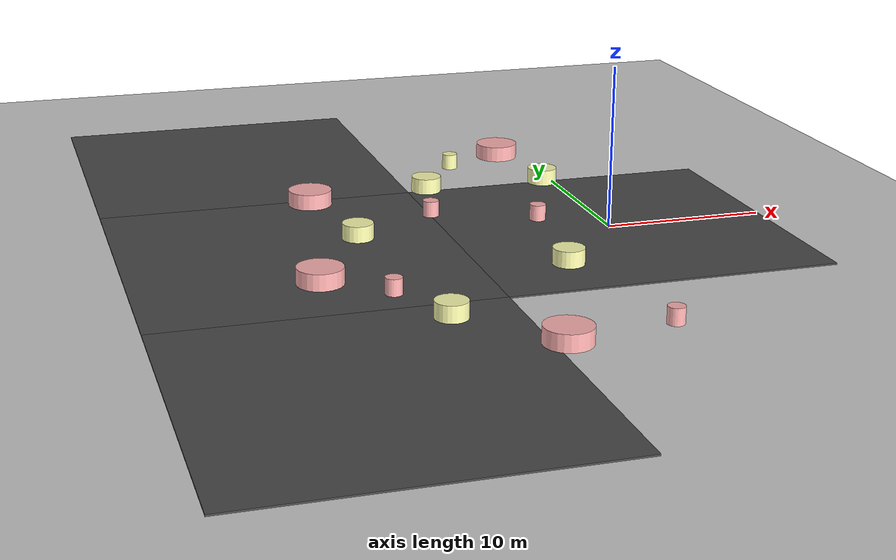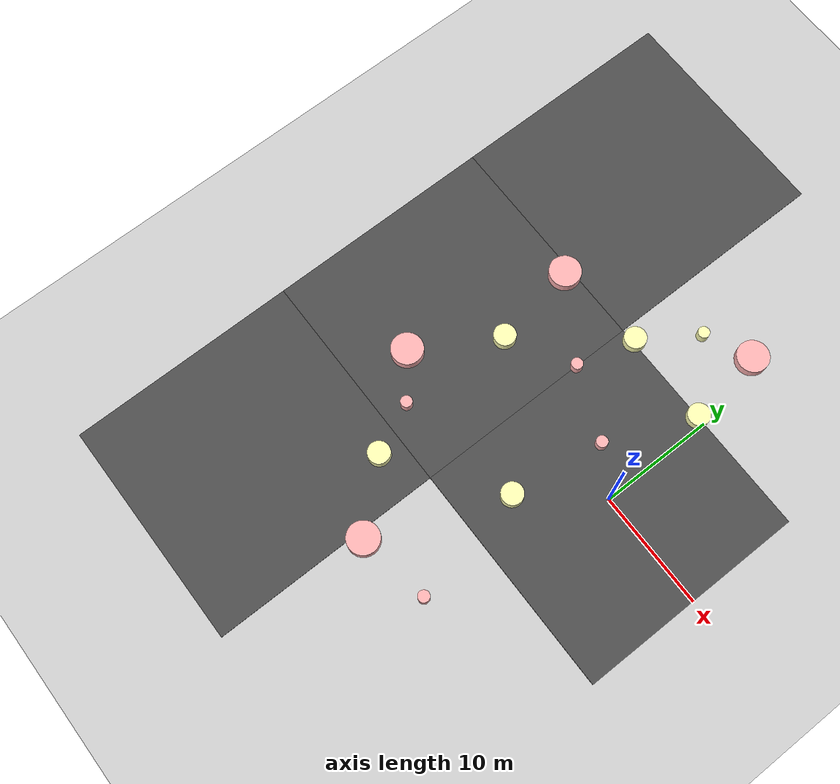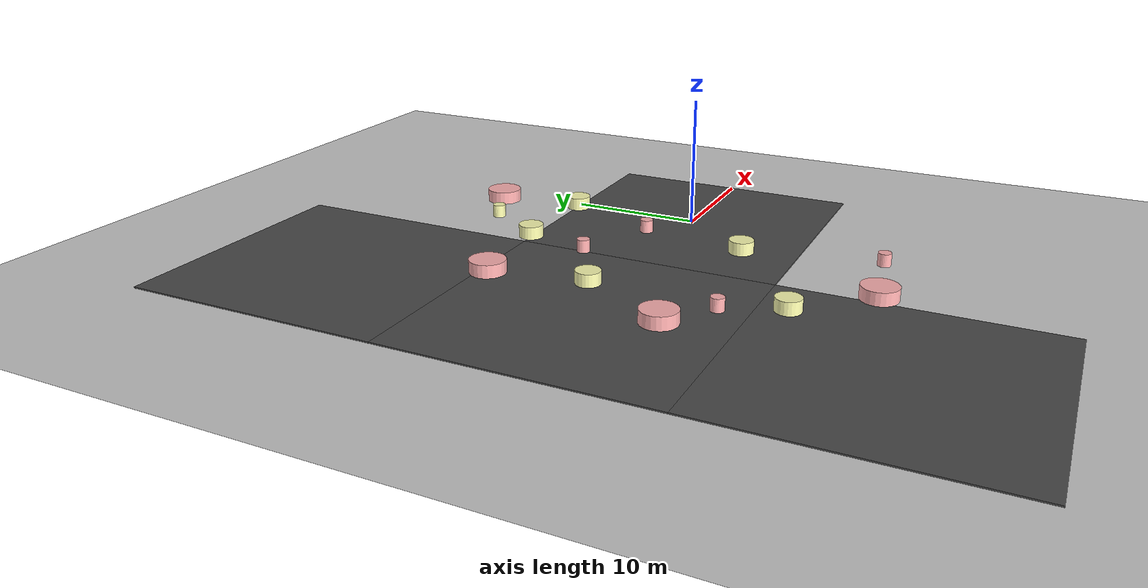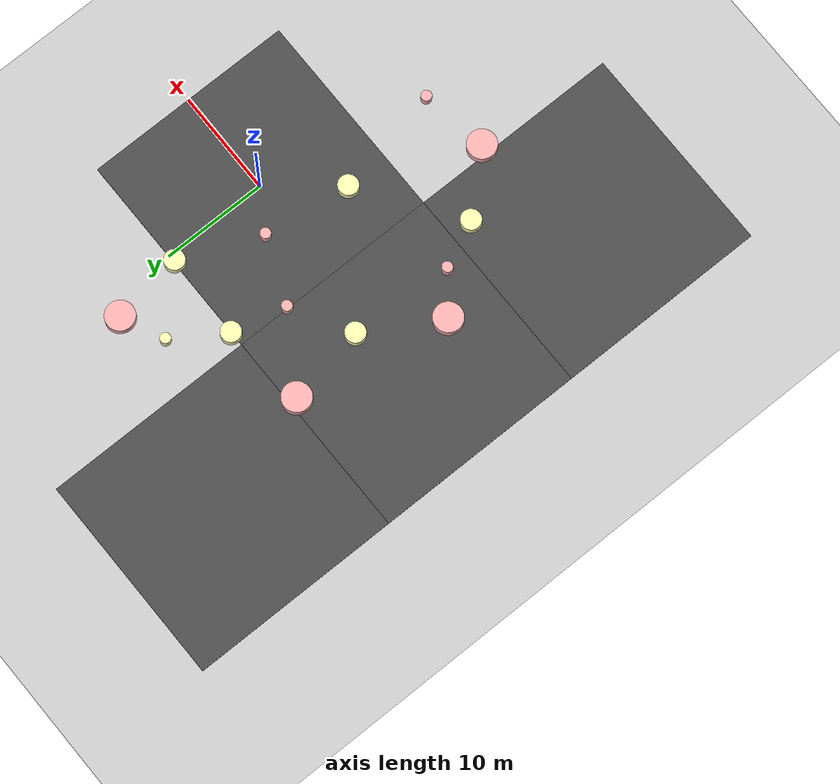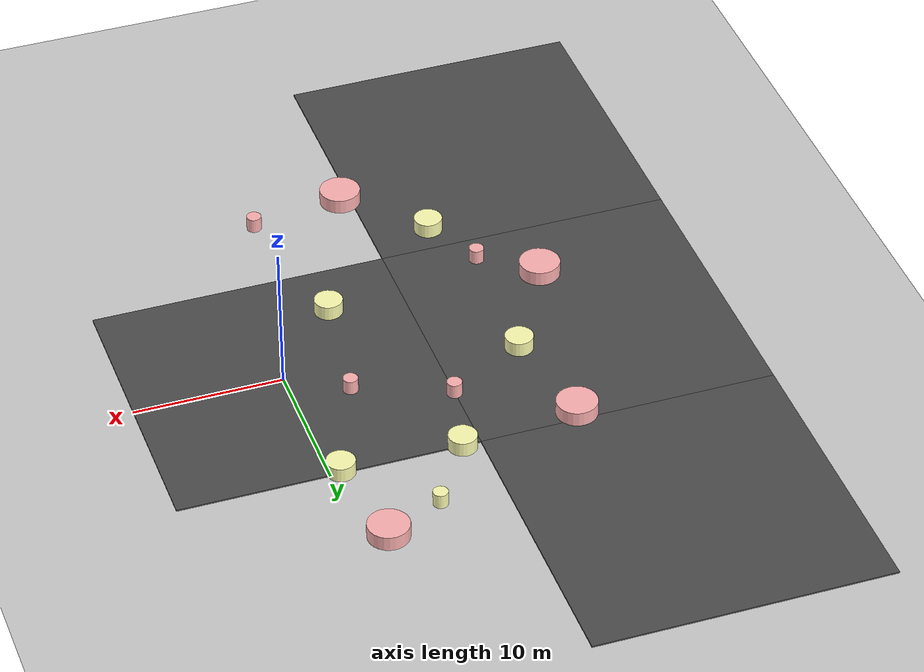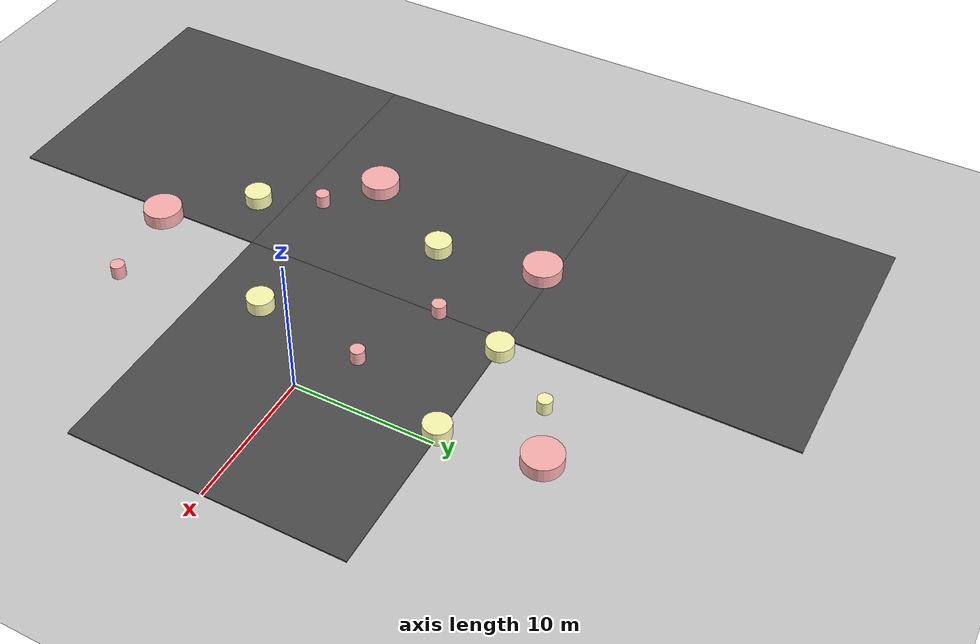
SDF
<sdf version="1.6">
 <world name="default">
  <model name="ground_plane">
   <static>1</static>
   <link name="link">
    <collision name="collision">
     <geometry><plane><normal>0 0 1</normal><size>100 100</size></plane></geometry>
     <surface><friction><ode><mu>100</mu><mu2>50</mu2></ode></friction></surface>
    </collision>
    <visual name="visual">
     <cast_shadows>0</cast_shadows>
     <geometry><plane><normal>0 0 1</normal><size>100 100</size></plane></geometry>
     <material>
      <script><uri>file://media/materials/scripts/gazebo.material</uri><name>Gazebo/Grey</name></script>
     </material>
    </visual>
   </link>
  </model>
  <model name="asphalt_plane">
   <static>1</static>
   <link name="link">
    <collision name="collision"><geometry><box><size>20 20 0.1</size></box></geometry></collision>
    <visual name="visual">
     <cast_shadows>0</cast_shadows>
     <geometry><box><size>20 20 0.1</size></box></geometry>
     <material>
      <script>
       <uri>model://asphalt_plane/materials/scripts</uri>
       <uri>model://asphalt_plane/materials/textures</uri>
       <name>vrc/asphalt</name>
      </script>
     </material>
    </visual>
   </link>
  </model>
  <model name="asphalt_plane_clone">
   <static>1</static>
   <link name="link">
    <collision name="collision"><geometry><box><size>20 20 0.1</size></box></geometry></collision>
    <visual name="visual">
     <cast_shadows>0</cast_shadows>
     <geometry><box><size>20 20 0.1</size></box></geometry>
     <material>
      <script>
       <uri>model://asphalt_plane/materials/scripts</uri>
       <uri>model://asphalt_plane/materials/textures</uri>
       <name>vrc/asphalt</name>
      </script>
     </material>
    </visual>
   </link>
   <pose>-20 0 0 0 -0 0</pose>
  </model>
  <model name="asphalt_plane_clone_clone_clone_0">
   <static>1</static>
   <link name="link">
    <collision name="collision"><geometry><box><size>20 20 0.1</size></box></geometry></collision>
    <visual name="visual">
     <cast_shadows>0</cast_shadows>
     <geometry><box><size>20 20 0.1</size></box></geometry>
     <material>
      <script>
       <uri>model://asphalt_plane/materials/scripts</uri>
       <uri>model://asphalt_plane/materials/textures</uri>
       <name>vrc/asphalt</name>
      </script>
     </material>
    </visual>
   </link>
   <pose>-20 20 0 0 -0 0</pose>
  </model>
  <model name="asphalt_plane_clone_clone_clone_4">
   <static>1</static>
   <link name="link">
    <collision name="collision"><geometry><box><size>20 20 0.1</size></box></geometry></collision>
    <visual name="visual">
     <cast_shadows>0</cast_shadows>
     <geometry><box><size>20 20 0.1</size></box></geometry>
     <material>
      <script>
       <uri>model://asphalt_plane/materials/scripts</uri>
       <uri>model://asphalt_plane/materials/textures</uri>
       <name>vrc/asphalt</name>
      </script>
     </material>
    </visual>
   </link>
   <pose>-20 -20 0 0 -0 0</pose>
  </model>
  <model name="LandmarksColoured_1">
   <link name="link_4">
    <pose>-2.89321 -15.9613 0 0 -0 0</pose>
    <inertial>
     <mass>1</mass>
     <inertia><ixx>0.145833</ixx><ixy>0</ixy><ixz>0</ixz><iyy>0.145833</iyy><iyz>0</iyz><izz>0.125</izz></inertia>
    </inertial>
    <visual name="visual">
     <geometry><cylinder><radius>0.5</radius><length>1</length></cylinder></geometry>
     <material>
      <lighting>1</lighting>
      <script><uri>file://media/materials/scripts/gazebo.material</uri><name>Gazebo/Grey</name></script>
      <ambient>1 0.3 0.3 1</ambient>
      <diffuse>1 0.7 0.7 1</diffuse>
      <specular>1 0.01 0.01 1</specular>
      <emissive>1 0 0 1</emissive>
      <shader type="vertex"><normal_map>__default__</normal_map></shader>
     </material>
    </visual>
    <collision name="collision">
     <geometry><cylinder><radius>0.5</radius><length>1</length></cylinder></geometry>
     <surface>
      <friction>
       <ode><mu>1</mu><mu2>1</mu2><fdir1>0 0 0</fdir1><slip1>0</slip1><slip2>0</slip2></ode>
       <torsional>
        <coefficient>1</coefficient>
        <patch_radius>0</patch_radius>
        <surface_radius>0</surface_radius>
        <use_patch_radius>1</use_patch_radius>
        <ode><slip>0</slip></ode>
       </torsional>
      </friction>
      <bounce><restitution_coefficient>0</restitution_coefficient><threshold>1e+06</threshold></bounce>
      <contact>
       <collide_without_contact>0</collide_without_contact>
       <collide_without_contact_bitmask>1</collide_without_contact_bitmask>
       <collide_bitmask>1</collide_bitmask>
       <ode>
        <soft_cfm>0</soft_cfm>
        <soft_erp>0.2</soft_erp>
        <kp>1e+13</kp>
        <kd>1</kd>
        <max_vel>0.01</max_vel>
        <min_depth>0</min_depth>
       </ode>
       <bullet>
        <split_impulse>1</split_impulse>
        <split_impulse_penetration_threshold>-0.01</split_impulse_penetration_threshold>
        <soft_cfm>0</soft_cfm>
        <soft_erp>0.2</soft_erp>
        <kp>1e+13</kp>
        <kd>1</kd>
       </bullet>
      </contact>
     </surface>
    </collision>
   </link>
   <link name="link_4_clone">
    <pose>-5.38997 14.9192 -0 0 -0 0</pose>
    <inertial>
     <mass>1</mass>
     <inertia><ixx>0.145833</ixx><ixy>0</ixy><ixz>0</ixz><iyy>0.145833</iyy><iyz>0</iyz><izz>0.125</izz></inertia>
    </inertial>
    <visual name="ModelPreview_4::link_4_clone::visual_1">
     <geometry><cylinder><radius>0.5</radius><length>1</length></cylinder></geometry>
     <material>
      <lighting>1</lighting>
      <script><uri>file://media/materials/scripts/gazebo.material</uri><name>Gazebo/Grey</name></script>
      <ambient>1 1 0.3 1</ambient>
      <diffuse>1 1 0.7 1</diffuse>
      <specular>1 1 0.01 1</specular>
      <emissive>1 0 0 1</emissive>
      <shader type="vertex"><normal_map>__default__</normal_map></shader>
     </material>
    </visual>
    <visual name="visual">
     <geometry><cylinder><radius>0.5</radius><length>1</length></cylinder></geometry>
     <material>
      <lighting>1</lighting>
      <script><uri>file://media/materials/scripts/gazebo.material</uri><name>Gazebo/Grey</name></script>
      <ambient>1 1 0.3 1</ambient>
      <diffuse>1 1 0.7 1</diffuse>
      <specular>1 1 0.01 1</specular>
      <emissive>1 1 0 1</emissive>
      <shader type="vertex"><normal_map>__default__</normal_map></shader>
     </material>
    </visual>
    <collision name="collision">
     <geometry><cylinder><radius>0.5</radius><length>1</length></cylinder></geometry>
     <surface>
      <friction>
       <ode><mu>1</mu><mu2>1</mu2><fdir1>0 0 0</fdir1><slip1>0</slip1><slip2>0</slip2></ode>
       <torsional>
        <coefficient>1</coefficient>
        <patch_radius>0</patch_radius>
        <surface_radius>0</surface_radius>
        <use_patch_radius>1</use_patch_radius>
        <ode><slip>0</slip></ode>
       </torsional>
      </friction>
      <bounce><restitution_coefficient>0</restitution_coefficient><threshold>1e+06</threshold></bounce>
      <contact>
       <collide_without_contact>0</collide_without_contact>
       <collide_without_contact_bitmask>1</collide_without_contact_bitmask>
       <collide_bitmask>1</collide_bitmask>
       <ode>
        <soft_cfm>0</soft_cfm>
        <soft_erp>0.2</soft_erp>
        <kp>1e+13</kp>
        <kd>1</kd>
        <max_vel>0.01</max_vel>
        <min_depth>0</min_depth>
       </ode>
       <bullet>
        <split_impulse>1</split_impulse>
        <split_impulse_penetration_threshold>-0.01</split_impulse_penetration_threshold>
        <soft_cfm>0</soft_cfm>
        <soft_erp>0.2</soft_erp>
        <kp>1e+13</kp>
        <kd>1</kd>
       </bullet>
      </contact>
     </surface>
    </collision>
   </link>
   <link name="link_4_clone_0">
    <pose>-16.491 9.53201 -0 0 -0 0</pose>
    <inertial>
     <mass>7.6137</mass>
     <inertia><ixx>4.2575</ixx><ixy>0</ixy><ixz>0</ixz><iyy>4.2575</iyy><iyz>0</iyz><izz>7.24605</izz></inertia>
    </inertial>
    <visual name="visual">
     <geometry><cylinder><radius>1.37965</radius><length>1</length></cylinder></geometry>
     <material>
      <lighting>1</lighting>
      <script><uri>file://media/materials/scripts/gazebo.material</uri><name>Gazebo/Grey</name></script>
      <ambient>1 0.3 0.3 1</ambient>
      <diffuse>1 0.7 0.7 1</diffuse>
      <specular>1 0.01 0.01 1</specular>
      <emissive>1 0 0 1</emissive>
      <shader type="vertex"><normal_map>__default__</normal_map></shader>
     </material>
    </visual>
    <collision name="collision">
     <geometry><cylinder><radius>1.37965</radius><length>1</length></cylinder></geometry>
     <surface>
      <friction>
       <ode><mu>1</mu><mu2>1</mu2><fdir1>0 0 0</fdir1><slip1>0</slip1><slip2>0</slip2></ode>
       <torsional>
        <coefficient>1</coefficient>
        <patch_radius>0</patch_radius>
        <surface_radius>0</surface_radius>
        <use_patch_radius>1</use_patch_radius>
        <ode><slip>0</slip></ode>
       </torsional>
      </friction>
      <bounce><restitution_coefficient>0</restitution_coefficient><threshold>1e+06</threshold></bounce>
      <contact>
       <collide_without_contact>0</collide_without_contact>
       <collide_without_contact_bitmask>1</collide_without_contact_bitmask>
       <collide_bitmask>1</collide_bitmask>
       <ode>
        <soft_cfm>0</soft_cfm>
        <soft_erp>0.2</soft_erp>
        <kp>1e+13</kp>
        <kd>1</kd>
        <max_vel>0.01</max_vel>
        <min_depth>0</min_depth>
       </ode>
       <bullet>
        <split_impulse>1</split_impulse>
        <split_impulse_penetration_threshold>-0.01</split_impulse_penetration_threshold>
        <soft_cfm>0</soft_cfm>
        <soft_erp>0.2</soft_erp>
        <kp>1e+13</kp>
        <kd>1</kd>
       </bullet>
      </contact>
     </surface>
    </collision>
   </link>
   <link name="link_4_clone_0_clone">
    <pose>-19.3072 -4.8348 -0 0 -0 0</pose>
    <inertial>
     <mass>7.6137</mass>
     <inertia><ixx>4.2575</ixx><ixy>0</ixy><ixz>0</ixz><iyy>4.2575</iyy><iyz>0</iyz><izz>7.24605</izz></inertia>
    </inertial>
    <visual name="visual">
     <geometry><cylinder><radius>1.37965</radius><length>1</length></cylinder></geometry>
     <material>
      <lighting>1</lighting>
      <script><uri>file://media/materials/scripts/gazebo.material</uri><name>Gazebo/Grey</name></script>
      <ambient>1 0.3 0.3 1</ambient>
      <diffuse>1 0.7 0.7 1</diffuse>
      <specular>1 0.01 0.01 1</specular>
      <emissive>1 0 0 1</emissive>
      <shader type="vertex"><normal_map>__default__</normal_map></shader>
     </material>
    </visual>
    <collision name="collision">
     <geometry><cylinder><radius>1.37965</radius><length>1</length></cylinder></geometry>
     <surface>
      <friction>
       <ode><mu>1</mu><mu2>1</mu2><fdir1>0 0 0</fdir1><slip1>0</slip1><slip2>0</slip2></ode>
       <torsional>
        <coefficient>1</coefficient>
        <patch_radius>0</patch_radius>
        <surface_radius>0</surface_radius>
        <use_patch_radius>1</use_patch_radius>
        <ode><slip>0</slip></ode>
       </torsional>
      </friction>
      <bounce><restitution_coefficient>0</restitution_coefficient><threshold>1e+06</threshold></bounce>
      <contact>
       <collide_without_contact>0</collide_without_contact>
       <collide_without_contact_bitmask>1</collide_without_contact_bitmask>
       <collide_bitmask>1</collide_bitmask>
       <ode>
        <soft_cfm>0</soft_cfm>
        <soft_erp>0.2</soft_erp>
        <kp>1e+13</kp>
        <kd>1</kd>
        <max_vel>0.01</max_vel>
        <min_depth>0</min_depth>
       </ode>
       <bullet>
        <split_impulse>1</split_impulse>
        <split_impulse_penetration_threshold>-0.01</split_impulse_penetration_threshold>
        <soft_cfm>0</soft_cfm>
        <soft_erp>0.2</soft_erp>
        <kp>1e+13</kp>
        <kd>1</kd>
       </bullet>
      </contact>
     </surface>
    </collision>
   </link>
   <link name="link_4_clone_0_clone_2">
    <pose>-1.39165 16.6645 -0 0 -0 0</pose>
    <inertial>
     <mass>7.6137</mass>
     <inertia><ixx>4.2575</ixx><ixy>0</ixy><ixz>0</ixz><iyy>4.2575</iyy><iyz>0</iyz><izz>7.24605</izz></inertia>
    </inertial>
    <visual name="visual">
     <geometry><cylinder><radius>1.37965</radius><length>1</length></cylinder></geometry>
     <material>
      <lighting>1</lighting>
      <script><uri>file://media/materials/scripts/gazebo.material</uri><name>Gazebo/Grey</name></script>
      <ambient>1 0.3 0.3 1</ambient>
      <diffuse>1 0.7 0.7 1</diffuse>
      <specular>1 0.01 0.01 1</specular>
      <emissive>1 0 0 1</emissive>
      <shader type="vertex"><normal_map>__default__</normal_map></shader>
     </material>
    </visual>
    <collision name="collision">
     <geometry><cylinder><radius>1.37965</radius><length>1</length></cylinder></geometry>
     <surface>
      <friction>
       <ode><mu>1</mu><mu2>1</mu2><fdir1>0 0 0</fdir1><slip1>0</slip1><slip2>0</slip2></ode>
       <torsional>
        <coefficient>1</coefficient>
        <patch_radius>0</patch_radius>
        <surface_radius>0</surface_radius>
        <use_patch_radius>1</use_patch_radius>
        <ode><slip>0</slip></ode>
       </torsional>
      </friction>
      <bounce><restitution_coefficient>0</restitution_coefficient><threshold>1e+06</threshold></bounce>
      <contact>
       <collide_without_contact>0</collide_without_contact>
       <collide_without_contact_bitmask>1</collide_without_contact_bitmask>
       <collide_bitmask>1</collide_bitmask>
       <ode>
        <soft_cfm>0</soft_cfm>
        <soft_erp>0.2</soft_erp>
        <kp>1e+13</kp>
        <kd>1</kd>
        <max_vel>0.01</max_vel>
        <min_depth>0</min_depth>
       </ode>
       <bullet>
        <split_impulse>1</split_impulse>
        <split_impulse_penetration_threshold>-0.01</split_impulse_penetration_threshold>
        <soft_cfm>0</soft_cfm>
        <soft_erp>0.2</soft_erp>
        <kp>1e+13</kp>
        <kd>1</kd>
       </bullet>
      </contact>
     </surface>
    </collision>
   </link>
   <link name="link_4_clone_0_clone_clone">
    <pose>-9.29686 -16.885 0 0 -0 0</pose>
    <inertial>
     <mass>7.6137</mass>
     <inertia><ixx>4.2575</ixx><ixy>0</ixy><ixz>0</ixz><iyy>4.2575</iyy><iyz>0</iyz><izz>7.24605</izz></inertia>
    </inertial>
    <visual name="visual">
     <geometry><cylinder><radius>1.37965</radius><length>1</length></cylinder></geometry>
     <material>
      <lighting>1</lighting>
      <script><uri>file://media/materials/scripts/gazebo.material</uri><name>Gazebo/Grey</name></script>
      <ambient>1 0.3 0.3 1</ambient>
      <diffuse>1 0.7 0.7 1</diffuse>
      <specular>1 0.01 0.01 1</specular>
      <emissive>1 0 0 1</emissive>
      <shader type="vertex"><normal_map>__default__</normal_map></shader>
     </material>
    </visual>
    <collision name="collision">
     <geometry><cylinder><radius>1.37965</radius><length>1</length></cylinder></geometry>
     <surface>
      <friction>
       <ode><mu>1</mu><mu2>1</mu2><fdir1>0 0 0</fdir1><slip1>0</slip1><slip2>0</slip2></ode>
       <torsional>
        <coefficient>1</coefficient>
        <patch_radius>0</patch_radius>
        <surface_radius>0</surface_radius>
        <use_patch_radius>1</use_patch_radius>
        <ode><slip>0</slip></ode>
       </torsional>
      </friction>
      <bounce><restitution_coefficient>0</restitution_coefficient><threshold>1e+06</threshold></bounce>
      <contact>
       <collide_without_contact>0</collide_without_contact>
       <collide_without_contact_bitmask>1</collide_without_contact_bitmask>
       <collide_bitmask>1</collide_bitmask>
       <ode>
        <soft_cfm>0</soft_cfm>
        <soft_erp>0.2</soft_erp>
        <kp>1e+13</kp>
        <kd>1</kd>
        <max_vel>0.01</max_vel>
        <min_depth>0</min_depth>
       </ode>
       <bullet>
        <split_impulse>1</split_impulse>
        <split_impulse_penetration_threshold>-0.01</split_impulse_penetration_threshold>
        <soft_cfm>0</soft_cfm>
        <soft_erp>0.2</soft_erp>
        <kp>1e+13</kp>
        <kd>1</kd>
       </bullet>
      </contact>
     </surface>
    </collision>
   </link>
   <link name="link_4_clone_1">
    <pose>-15.8394 -7.60505 1.4e-05 0 -0 0</pose>
    <inertial>
     <mass>1</mass>
     <inertia><ixx>0.145833</ixx><ixy>0</ixy><ixz>0</ixz><iyy>0.145833</iyy><iyz>0</iyz><izz>0.125</izz></inertia>
    </inertial>
    <visual name="visual">
     <geometry><cylinder><radius>0.5</radius><length>1</length></cylinder></geometry>
     <material>
      <lighting>1</lighting>
      <script><uri>file://media/materials/scripts/gazebo.material</uri><name>Gazebo/Grey</name></script>
      <ambient>1 0.3 0.3 1</ambient>
      <diffuse>1 0.7 0.7 1</diffuse>
      <specular>1 0.01 0.01 1</specular>
      <emissive>1 0 0 1</emissive>
      <shader type="vertex"><normal_map>__default__</normal_map></shader>
     </material>
    </visual>
    <collision name="collision">
     <geometry><cylinder><radius>0.5</radius><length>1</length></cylinder></geometry>
     <surface>
      <friction>
       <ode><mu>1</mu><mu2>1</mu2><fdir1>0 0 0</fdir1><slip1>0</slip1><slip2>0</slip2></ode>
       <torsional>
        <coefficient>1</coefficient>
        <patch_radius>0</patch_radius>
        <surface_radius>0</surface_radius>
        <use_patch_radius>1</use_patch_radius>
        <ode><slip>0</slip></ode>
       </torsional>
      </friction>
      <bounce><restitution_coefficient>0</restitution_coefficient><threshold>1e+06</threshold></bounce>
      <contact>
       <collide_without_contact>0</collide_without_contact>
       <collide_without_contact_bitmask>1</collide_without_contact_bitmask>
       <collide_bitmask>1</collide_bitmask>
       <ode>
        <soft_cfm>0</soft_cfm>
        <soft_erp>0.2</soft_erp>
        <kp>1e+13</kp>
        <kd>1</kd>
        <max_vel>0.01</max_vel>
        <min_depth>0</min_depth>
       </ode>
       <bullet>
        <split_impulse>1</split_impulse>
        <split_impulse_penetration_threshold>-0.01</split_impulse_penetration_threshold>
        <soft_cfm>0</soft_cfm>
        <soft_erp>0.2</soft_erp>
        <kp>1e+13</kp>
        <kd>1</kd>
       </bullet>
      </contact>
     </surface>
    </collision>
   </link>
   <link name="link_4_clone_4">
    <pose>-3.62741 2.51345 -8e-06 0 -0 0</pose>
    <inertial>
     <mass>1</mass>
     <inertia><ixx>0.145833</ixx><ixy>0</ixy><ixz>0</ixz><iyy>0.145833</iyy><iyz>0</iyz><izz>0.125</izz></inertia>
    </inertial>
    <visual name="visual">
     <geometry><cylinder><radius>0.5</radius><length>1</length></cylinder></geometry>
     <material>
      <lighting>1</lighting>
      <script><uri>file://media/materials/scripts/gazebo.material</uri><name>Gazebo/Grey</name></script>
      <ambient>1 0.3 0.3 1</ambient>
      <diffuse>1 0.7 0.7 1</diffuse>
      <specular>1 0.01 0.01 1</specular>
      <emissive>1 0 0 1</emissive>
      <shader type="vertex"><normal_map>__default__</normal_map></shader>
     </material>
    </visual>
    <collision name="collision">
     <geometry><cylinder><radius>0.5</radius><length>1</length></cylinder></geometry>
     <surface>
      <friction>
       <ode><mu>1</mu><mu2>1</mu2><fdir1>0 0 0</fdir1><slip1>0</slip1><slip2>0</slip2></ode>
       <torsional>
        <coefficient>1</coefficient>
        <patch_radius>0</patch_radius>
        <surface_radius>0</surface_radius>
        <use_patch_radius>1</use_patch_radius>
        <ode><slip>0</slip></ode>
       </torsional>
      </friction>
      <bounce><restitution_coefficient>0</restitution_coefficient><threshold>1e+06</threshold></bounce>
      <contact>
       <collide_without_contact>0</collide_without_contact>
       <collide_without_contact_bitmask>1</collide_without_contact_bitmask>
       <collide_bitmask>1</collide_bitmask>
       <ode>
        <soft_cfm>0</soft_cfm>
        <soft_erp>0.2</soft_erp>
        <kp>1e+13</kp>
        <kd>1</kd>
        <max_vel>0.01</max_vel>
        <min_depth>0</min_depth>
       </ode>
       <bullet>
        <split_impulse>1</split_impulse>
        <split_impulse_penetration_threshold>-0.01</split_impulse_penetration_threshold>
        <soft_cfm>0</soft_cfm>
        <soft_erp>0.2</soft_erp>
        <kp>1e+13</kp>
        <kd>1</kd>
       </bullet>
      </contact>
     </surface>
    </collision>
   </link>
   <link name="link_4_clone_5">
    <pose>-9.77094 5.13198 1.4e-05 0 -0 0</pose>
    <inertial>
     <mass>1</mass>
     <inertia><ixx>0.145833</ixx><ixy>0</ixy><ixz>0</ixz><iyy>0.145833</iyy><iyz>0</iyz><izz>0.125</izz></inertia>
    </inertial>
    <visual name="visual">
     <geometry><cylinder><radius>0.5</radius><length>1</length></cylinder></geometry>
     <material>
      <lighting>1</lighting>
      <script><uri>file://media/materials/scripts/gazebo.material</uri><name>Gazebo/Grey</name></script>
      <ambient>1 0.3 0.3 1</ambient>
      <diffuse>1 0.7 0.7 1</diffuse>
      <specular>1 0.01 0.01 1</specular>
      <emissive>1 0 0 1</emissive>
      <shader type="vertex"><normal_map>__default__</normal_map></shader>
     </material>
    </visual>
    <collision name="collision">
     <geometry><cylinder><radius>0.5</radius><length>1</length></cylinder></geometry>
     <surface>
      <friction>
       <ode><mu>1</mu><mu2>1</mu2><fdir1>0 0 0</fdir1><slip1>0</slip1><slip2>0</slip2></ode>
       <torsional>
        <coefficient>1</coefficient>
        <patch_radius>0</patch_radius>
        <surface_radius>0</surface_radius>
        <use_patch_radius>1</use_patch_radius>
        <ode><slip>0</slip></ode>
       </torsional>
      </friction>
      <bounce><restitution_coefficient>0</restitution_coefficient><threshold>1e+06</threshold></bounce>
      <contact>
       <collide_without_contact>0</collide_without_contact>
       <collide_without_contact_bitmask>1</collide_without_contact_bitmask>
       <collide_bitmask>1</collide_bitmask>
       <ode>
        <soft_cfm>0</soft_cfm>
        <soft_erp>0.2</soft_erp>
        <kp>1e+13</kp>
        <kd>1</kd>
        <max_vel>0.01</max_vel>
        <min_depth>0</min_depth>
       </ode>
       <bullet>
        <split_impulse>1</split_impulse>
        <split_impulse_penetration_threshold>-0.01</split_impulse_penetration_threshold>
        <soft_cfm>0</soft_cfm>
        <soft_erp>0.2</soft_erp>
        <kp>1e+13</kp>
        <kd>1</kd>
       </bullet>
      </contact>
     </surface>
    </collision>
   </link>
   <link name="link_4_clone_clone_clone">
    <pose>-13.8953 -11.8511 -1e-06 0 -0 0</pose>
    <inertial>
     <mass>3.64615</mass>
     <inertia><ixx>1.13475</ixx><ixy>0</ixy><ixz>0</ixz><iyy>1.13475</iyy><iyz>0</iyz><izz>1.6618</izz></inertia>
    </inertial>
    <visual name="visual_1">
     <geometry><cylinder><radius>0.954744</radius><length>1</length></cylinder></geometry>
     <material>
      <lighting>1</lighting>
      <script><uri>file://media/materials/scripts/gazebo.material</uri><name>Gazebo/Grey</name></script>
      <ambient>1 1 0.3 1</ambient>
      <diffuse>1 1 0.7 1</diffuse>
      <specular>1 1 0.01 1</specular>
      <emissive>1 0 0 1</emissive>
      <shader type="vertex"><normal_map>__default__</normal_map></shader>
     </material>
    </visual>
    <visual name="visual">
     <geometry><cylinder><radius>0.954744</radius><length>1</length></cylinder></geometry>
     <material>
      <lighting>1</lighting>
      <script><uri>file://media/materials/scripts/gazebo.material</uri><name>Gazebo/Grey</name></script>
      <ambient>1 1 0.3 1</ambient>
      <diffuse>1 1 0.7 1</diffuse>
      <specular>1 1 0.01 1</specular>
      <emissive>1 1 0 1</emissive>
      <shader type="vertex"><normal_map>__default__</normal_map></shader>
     </material>
    </visual>
    <collision name="collision">
     <geometry><cylinder><radius>0.954744</radius><length>1</length></cylinder></geometry>
     <surface>
      <friction>
       <ode><mu>1</mu><mu2>1</mu2><fdir1>0 0 0</fdir1><slip1>0</slip1><slip2>0</slip2></ode>
       <torsional>
        <coefficient>1</coefficient>
        <patch_radius>0</patch_radius>
        <surface_radius>0</surface_radius>
        <use_patch_radius>1</use_patch_radius>
        <ode><slip>0</slip></ode>
       </torsional>
      </friction>
      <bounce><restitution_coefficient>0</restitution_coefficient><threshold>1e+06</threshold></bounce>
      <contact>
       <collide_without_contact>0</collide_without_contact>
       <collide_without_contact_bitmask>1</collide_without_contact_bitmask>
       <collide_bitmask>1</collide_bitmask>
       <ode>
        <soft_cfm>0</soft_cfm>
        <soft_erp>0.2</soft_erp>
        <kp>1e+13</kp>
        <kd>1</kd>
        <max_vel>0.01</max_vel>
        <min_depth>0</min_depth>
       </ode>
       <bullet>
        <split_impulse>1</split_impulse>
        <split_impulse_penetration_threshold>-0.01</split_impulse_penetration_threshold>
        <soft_cfm>0</soft_cfm>
        <soft_erp>0.2</soft_erp>
        <kp>1e+13</kp>
        <kd>1</kd>
       </bullet>
      </contact>
     </surface>
    </collision>
   </link>
   <link name="link_4_clone_clone_clone_1">
    <pose>-8.50667 10.265 -0 0 -0 0</pose>
    <inertial>
     <mass>3.64615</mass>
     <inertia><ixx>1.13475</ixx><ixy>0</ixy><ixz>0</ixz><iyy>1.13475</iyy><iyz>0</iyz><izz>1.6618</izz></inertia>
    </inertial>
    <visual name="visual_1">
     <geometry><cylinder><radius>0.954744</radius><length>1</length></cylinder></geometry>
     <material>
      <lighting>1</lighting>
      <script><uri>file://media/materials/scripts/gazebo.material</uri><name>Gazebo/Grey</name></script>
      <ambient>1 1 0.3 1</ambient>
      <diffuse>1 1 0.7 1</diffuse>
      <specular>1 1 0.01 1</specular>
      <emissive>1 0 0 1</emissive>
      <shader type="vertex"><normal_map>__default__</normal_map></shader>
     </material>
    </visual>
    <visual name="visual">
     <geometry><cylinder><radius>0.954744</radius><length>1</length></cylinder></geometry>
     <material>
      <lighting>1</lighting>
      <script><uri>file://media/materials/scripts/gazebo.material</uri><name>Gazebo/Grey</name></script>
      <ambient>1 1 0.3 1</ambient>
      <diffuse>1 1 0.7 1</diffuse>
      <specular>1 1 0.01 1</specular>
      <emissive>1 1 0 1</emissive>
      <shader type="vertex"><normal_map>__default__</normal_map></shader>
     </material>
    </visual>
    <collision name="collision">
     <geometry><cylinder><radius>0.954744</radius><length>1</length></cylinder></geometry>
     <surface>
      <friction>
       <ode><mu>1</mu><mu2>1</mu2><fdir1>0 0 0</fdir1><slip1>0</slip1><slip2>0</slip2></ode>
       <torsional>
        <coefficient>1</coefficient>
        <patch_radius>0</patch_radius>
        <surface_radius>0</surface_radius>
        <use_patch_radius>1</use_patch_radius>
        <ode><slip>0</slip></ode>
       </torsional>
      </friction>
      <bounce><restitution_coefficient>0</restitution_coefficient><threshold>1e+06</threshold></bounce>
      <contact>
       <collide_without_contact>0</collide_without_contact>
       <collide_without_contact_bitmask>1</collide_without_contact_bitmask>
       <collide_bitmask>1</collide_bitmask>
       <ode>
        <soft_cfm>0</soft_cfm>
        <soft_erp>0.2</soft_erp>
        <kp>1e+13</kp>
        <kd>1</kd>
        <max_vel>0.01</max_vel>
        <min_depth>0</min_depth>
       </ode>
       <bullet>
        <split_impulse>1</split_impulse>
        <split_impulse_penetration_threshold>-0.01</split_impulse_penetration_threshold>
        <soft_cfm>0</soft_cfm>
        <soft_erp>0.2</soft_erp>
        <kp>1e+13</kp>
        <kd>1</kd>
       </bullet>
      </contact>
     </surface>
    </collision>
   </link>
   <link name="link_4_clone_clone_clone_1_clone_0_clone">
    <pose>-4.81463 -5.6848 0 0 -0 0</pose>
    <inertial>
     <mass>3.64615</mass>
     <inertia><ixx>1.13475</ixx><ixy>0</ixy><ixz>0</ixz><iyy>1.13475</iyy><iyz>0</iyz><izz>1.6618</izz></inertia>
    </inertial>
    <visual name="ModelPreview_3::link_4_clone_clone_clone_1_clone_0_clone::visual_4">
     <geometry><cylinder><radius>0.954744</radius><length>1</length></cylinder></geometry>
     <material>
      <lighting>1</lighting>
      <script><uri>file://media/materials/scripts/gazebo.material</uri><name>Gazebo/Grey</name></script>
      <ambient>1 1 0.3 1</ambient>
      <diffuse>1 1 0.7 1</diffuse>
      <specular>1 1 0.01 1</specular>
      <emissive>1 1 0 1</emissive>
      <shader type="vertex"><normal_map>__default__</normal_map></shader>
     </material>
    </visual>
    <visual name="ModelPreview_3::link_4_clone_clone_clone_1_clone_0_clone::visual_6">
     <geometry><cylinder><radius>0.954744</radius><length>1</length></cylinder></geometry>
     <material>
      <lighting>1</lighting>
      <script><uri>file://media/materials/scripts/gazebo.material</uri><name>Gazebo/Grey</name></script>
      <ambient>1 1 0.3 1</ambient>
      <diffuse>1 1 0.7 1</diffuse>
      <specular>1 1 0.01 1</specular>
      <emissive>1 1 0 1</emissive>
      <shader type="vertex"><normal_map>__default__</normal_map></shader>
     </material>
    </visual>
    <visual name="ModelPreview_3::link_4_clone_clone_clone_1_clone_0_clone::visual_3">
     <geometry><cylinder><radius>0.954744</radius><length>1</length></cylinder></geometry>
     <material>
      <lighting>1</lighting>
      <script><uri>file://media/materials/scripts/gazebo.material</uri><name>Gazebo/Grey</name></script>
      <ambient>1 1 0.3 1</ambient>
      <diffuse>1 1 0.7 1</diffuse>
      <specular>1 1 0.01 1</specular>
      <emissive>1 1 0 1</emissive>
      <shader type="vertex"><normal_map>__default__</normal_map></shader>
     </material>
    </visual>
    <visual name="ModelPreview_3::link_4_clone_clone_clone_1_clone_0_clone::visual_2">
     <geometry><cylinder><radius>0.954744</radius><length>1</length></cylinder></geometry>
     <material>
      <lighting>1</lighting>
      <script><uri>file://media/materials/scripts/gazebo.material</uri><name>Gazebo/Grey</name></script>
      <ambient>1 1 0.3 1</ambient>
      <diffuse>1 1 0.7 1</diffuse>
      <specular>1 1 0.01 1</specular>
      <emissive>1 1 0 1</emissive>
      <shader type="vertex"><normal_map>__default__</normal_map></shader>
     </material>
    </visual>
    <visual name="visual_1">
     <geometry><cylinder><radius>0.954744</radius><length>1</length></cylinder></geometry>
     <material>
      <lighting>1</lighting>
      <script><uri>file://media/materials/scripts/gazebo.material</uri><name>Gazebo/Grey</name></script>
      <ambient>1 0 0 1</ambient>
      <diffuse>1 0 0 1</diffuse>
      <specular>1 0 0 1</specular>
      <emissive>1 0 0 1</emissive>
      <shader type="vertex"><normal_map>__default__</normal_map></shader>
     </material>
    </visual>
    <visual name="visual">
     <geometry><cylinder><radius>0.954744</radius><length>1</length></cylinder></geometry>
     <material>
      <lighting>1</lighting>
      <script><uri>file://media/materials/scripts/gazebo.material</uri><name>Gazebo/Grey</name></script>
      <ambient>1 1 0.3 1</ambient>
      <diffuse>1 1 0.7 1</diffuse>
      <specular>1 1 0.01 1</specular>
      <emissive>1 1 0 1</emissive>
      <shader type="vertex"><normal_map>__default__</normal_map></shader>
     </material>
    </visual>
    <visual name="ModelPreview_3::link_4_clone_clone_clone_1_clone_0_clone::visual_5">
     <geometry><cylinder><radius>0.954744</radius><length>1</length></cylinder></geometry>
     <material>
      <lighting>1</lighting>
      <script><uri>file://media/materials/scripts/gazebo.material</uri><name>Gazebo/Grey</name></script>
      <ambient>1 1 0.3 1</ambient>
      <diffuse>1 1 0.7 1</diffuse>
      <specular>1 1 0.01 1</specular>
      <emissive>1 1 0 1</emissive>
      <shader type="vertex"><normal_map>__default__</normal_map></shader>
     </material>
    </visual>
    <visual name="ModelPreview_3::link_4_clone_clone_clone_1_clone_0_clone::visual_7">
     <geometry><cylinder><radius>0.954744</radius><length>1</length></cylinder></geometry>
     <material>
      <lighting>1</lighting>
      <script><uri>file://media/materials/scripts/gazebo.material</uri><name>Gazebo/Grey</name></script>
      <ambient>1 1 0.3 1</ambient>
      <diffuse>1 1 0.7 1</diffuse>
      <specular>1 1 0.01 1</specular>
      <emissive>1 1 0 1</emissive>
      <shader type="vertex"><normal_map>__default__</normal_map></shader>
     </material>
    </visual>
    <visual name="ModelPreview_3::link_4_clone_clone_clone_1_clone_0_clone::visual_9">
     <geometry><cylinder><radius>0.954744</radius><length>1</length></cylinder></geometry>
     <material>
      <lighting>1</lighting>
      <script><uri>file://media/materials/scripts/gazebo.material</uri><name>Gazebo/Grey</name></script>
      <ambient>1 1 0.3 1</ambient>
      <diffuse>1 1 0.7 1</diffuse>
      <specular>1 1 0.01 1</specular>
      <emissive>1 1 0 1</emissive>
      <shader type="vertex"><normal_map>__default__</normal_map></shader>
     </material>
    </visual>
    <visual name="ModelPreview_3::link_4_clone_clone_clone_1_clone_0_clone::visual_8">
     <geometry><cylinder><radius>0.954744</radius><length>1</length></cylinder></geometry>
     <material>
      <lighting>1</lighting>
      <script><uri>file://media/materials/scripts/gazebo.material</uri><name>Gazebo/Grey</name></script>
      <ambient>1 1 0.3 1</ambient>
      <diffuse>1 1 0.7 1</diffuse>
      <specular>1 1 0.01 1</specular>
      <emissive>1 1 0 1</emissive>
      <shader type="vertex"><normal_map>__default__</normal_map></shader>
     </material>
    </visual>
    <visual name="ModelPreview_3::link_4_clone_clone_clone_1_clone_0_clone::visual_10">
     <geometry><cylinder><radius>0.954744</radius><length>1</length></cylinder></geometry>
     <material>
      <lighting>1</lighting>
      <script><uri>file://media/materials/scripts/gazebo.material</uri><name>Gazebo/Grey</name></script>
      <ambient>1 1 0.3 1</ambient>
      <diffuse>1 1 0.7 1</diffuse>
      <specular>1 1 0.01 1</specular>
      <emissive>1 1 0 1</emissive>
      <shader type="vertex"><normal_map>__default__</normal_map></shader>
     </material>
    </visual>
    <visual name="ModelPreview_3::link_4_clone_clone_clone_1_clone_0_clone::visual_11">
     <geometry><cylinder><radius>0.954744</radius><length>1</length></cylinder></geometry>
     <material>
      <lighting>1</lighting>
      <script><uri>file://media/materials/scripts/gazebo.material</uri><name>Gazebo/Grey</name></script>
      <ambient>1 1 0.3 1</ambient>
      <diffuse>1 1 0.7 1</diffuse>
      <specular>1 1 0.01 1</specular>
      <emissive>1 1 0 1</emissive>
      <shader type="vertex"><normal_map>__default__</normal_map></shader>
     </material>
    </visual>
    <visual name="ModelPreview_3::link_4_clone_clone_clone_1_clone_0_clone::visual_12">
     <geometry><cylinder><radius>0.954744</radius><length>1</length></cylinder></geometry>
     <material>
      <lighting>1</lighting>
      <script><uri>file://media/materials/scripts/gazebo.material</uri><name>Gazebo/Grey</name></script>
      <ambient>1 1 0.3 1</ambient>
      <diffuse>1 1 0.7 1</diffuse>
      <specular>1 1 0.01 1</specular>
      <emissive>1 1 0 1</emissive>
      <shader type="vertex"><normal_map>__default__</normal_map></shader>
     </material>
    </visual>
    <visual name="ModelPreview_3::link_4_clone_clone_clone_1_clone_0_clone::visual_13">
     <geometry><cylinder><radius>0.954744</radius><length>1</length></cylinder></geometry>
     <material>
      <lighting>1</lighting>
      <script><uri>file://media/materials/scripts/gazebo.material</uri><name>Gazebo/Grey</name></script>
      <ambient>1 1 0.3 1</ambient>
      <diffuse>1 1 0.7 1</diffuse>
      <specular>1 1 0.01 1</specular>
      <emissive>1 1 0 1</emissive>
      <shader type="vertex"><normal_map>__default__</normal_map></shader>
     </material>
    </visual>
    <visual name="ModelPreview_3::link_4_clone_clone_clone_1_clone_0_clone::visual_14">
     <geometry><cylinder><radius>0.954744</radius><length>1</length></cylinder></geometry>
     <material>
      <lighting>1</lighting>
      <script><uri>file://media/materials/scripts/gazebo.material</uri><name>Gazebo/Grey</name></script>
      <ambient>1 1 0.3 1</ambient>
      <diffuse>1 1 0.7 1</diffuse>
      <specular>1 1 0.01 1</specular>
      <emissive>1 1 0 1</emissive>
      <shader type="vertex"><normal_map>__default__</normal_map></shader>
     </material>
    </visual>
    <collision name="collision">
     <geometry><cylinder><radius>0.954744</radius><length>1</length></cylinder></geometry>
     <surface>
      <friction>
       <ode><mu>1</mu><mu2>1</mu2><fdir1>0 0 0</fdir1><slip1>0</slip1><slip2>0</slip2></ode>
       <torsional>
        <coefficient>1</coefficient>
        <patch_radius>0</patch_radius>
        <surface_radius>0</surface_radius>
        <use_patch_radius>1</use_patch_radius>
        <ode><slip>0</slip></ode>
       </torsional>
      </friction>
      <bounce><restitution_coefficient>0</restitution_coefficient><threshold>1e+06</threshold></bounce>
      <contact>
       <collide_without_contact>0</collide_without_contact>
       <collide_without_contact_bitmask>1</collide_without_contact_bitmask>
       <collide_bitmask>1</collide_bitmask>
       <ode>
        <soft_cfm>0</soft_cfm>
        <soft_erp>0.2</soft_erp>
        <kp>1e+13</kp>
        <kd>1</kd>
        <max_vel>0.01</max_vel>
        <min_depth>0</min_depth>
       </ode>
       <bullet>
        <split_impulse>1</split_impulse>
        <split_impulse_penetration_threshold>-0.01</split_impulse_penetration_threshold>
        <soft_cfm>0</soft_cfm>
        <soft_erp>0.2</soft_erp>
        <kp>1e+13</kp>
        <kd>1</kd>
       </bullet>
      </contact>
     </surface>
    </collision>
   </link>
   <link name="link_4_clone_clone_clone_1_clone_0_clone_clone_0">
    <pose>-0.5 10 -0 0 -0 0</pose>
    <inertial>
     <mass>3.64615</mass>
     <inertia><ixx>1.13475</ixx><ixy>0</ixy><ixz>0</ixz><iyy>1.13475</iyy><iyz>0</iyz><izz>1.6618</izz></inertia>
    </inertial>
    <visual name="visual">
     <geometry><cylinder><radius>0.954744</radius><length>1</length></cylinder></geometry>
     <material>
      <lighting>1</lighting>
      <script><uri>file://media/materials/scripts/gazebo.material</uri><name>Gazebo/Grey</name></script>
      <ambient>1 1 0.3 1</ambient>
      <diffuse>1 1 0.7 1</diffuse>
      <specular>1 1 0.01 1</specular>
      <emissive>1 1 0 1</emissive>
      <shader type="vertex"><normal_map>__default__</normal_map></shader>
     </material>
    </visual>
    <visual name="visual_5">
     <geometry><cylinder><radius>0.954744</radius><length>1</length></cylinder></geometry>
     <material>
      <lighting>1</lighting>
      <script><uri>file://media/materials/scripts/gazebo.material</uri><name>Gazebo/Grey</name></script>
      <ambient>1 1 0.3 1</ambient>
      <diffuse>1 1 0.7 1</diffuse>
      <specular>1 1 0.01 1</specular>
      <emissive>1 1 0 1</emissive>
      <shader type="vertex"><normal_map>__default__</normal_map></shader>
     </material>
    </visual>
    <visual name="visual_2">
     <geometry><cylinder><radius>0.954744</radius><length>1</length></cylinder></geometry>
     <material>
      <lighting>1</lighting>
      <script><uri>file://media/materials/scripts/gazebo.material</uri><name>Gazebo/Grey</name></script>
      <ambient>1 1 0.3 1</ambient>
      <diffuse>1 1 0.7 1</diffuse>
      <specular>1 1 0.01 1</specular>
      <emissive>1 1 0 1</emissive>
      <shader type="vertex"><normal_map>__default__</normal_map></shader>
     </material>
    </visual>
    <visual name="visual_1">
     <geometry><cylinder><radius>0.954744</radius><length>1</length></cylinder></geometry>
     <material>
      <lighting>1</lighting>
      <script><uri>file://media/materials/scripts/gazebo.material</uri><name>Gazebo/Grey</name></script>
      <ambient>1 0 0 1</ambient>
      <diffuse>1 0 0 1</diffuse>
      <specular>1 0 0 1</specular>
      <emissive>1 0 0 1</emissive>
      <shader type="vertex"><normal_map>__default__</normal_map></shader>
     </material>
    </visual>
    <visual name="visual_4">
     <geometry><cylinder><radius>0.954744</radius><length>1</length></cylinder></geometry>
     <material>
      <lighting>1</lighting>
      <script><uri>file://media/materials/scripts/gazebo.material</uri><name>Gazebo/Grey</name></script>
      <ambient>1 1 0.3 1</ambient>
      <diffuse>1 1 0.7 1</diffuse>
      <specular>1 1 0.01 1</specular>
      <emissive>1 1 0 1</emissive>
      <shader type="vertex"><normal_map>__default__</normal_map></shader>
     </material>
    </visual>
    <visual name="visual_6">
     <geometry><cylinder><radius>0.954744</radius><length>1</length></cylinder></geometry>
     <material>
      <lighting>1</lighting>
      <script><uri>file://media/materials/scripts/gazebo.material</uri><name>Gazebo/Grey</name></script>
      <ambient>1 1 0.3 1</ambient>
      <diffuse>1 1 0.7 1</diffuse>
      <specular>1 1 0.01 1</specular>
      <emissive>1 1 0 1</emissive>
      <shader type="vertex"><normal_map>__default__</normal_map></shader>
     </material>
    </visual>
    <visual name="visual_3">
     <geometry><cylinder><radius>0.954744</radius><length>1</length></cylinder></geometry>
     <material>
      <lighting>1</lighting>
      <script><uri>file://media/materials/scripts/gazebo.material</uri><name>Gazebo/Grey</name></script>
      <ambient>1 1 0.3 1</ambient>
      <diffuse>1 1 0.7 1</diffuse>
      <specular>1 1 0.01 1</specular>
      <emissive>1 1 0 1</emissive>
      <shader type="vertex"><normal_map>__default__</normal_map></shader>
     </material>
    </visual>
    <visual name="visual_7">
     <geometry><cylinder><radius>0.954744</radius><length>1</length></cylinder></geometry>
     <material>
      <lighting>1</lighting>
      <script><uri>file://media/materials/scripts/gazebo.material</uri><name>Gazebo/Grey</name></script>
      <ambient>1 1 0.3 1</ambient>
      <diffuse>1 1 0.7 1</diffuse>
      <specular>1 1 0.01 1</specular>
      <emissive>1 1 0 1</emissive>
      <shader type="vertex"><normal_map>__default__</normal_map></shader>
     </material>
    </visual>
    <visual name="visual_9">
     <geometry><cylinder><radius>0.954744</radius><length>1</length></cylinder></geometry>
     <material>
      <lighting>1</lighting>
      <script><uri>file://media/materials/scripts/gazebo.material</uri><name>Gazebo/Grey</name></script>
      <ambient>1 1 0.3 1</ambient>
      <diffuse>1 1 0.7 1</diffuse>
      <specular>1 1 0.01 1</specular>
      <emissive>1 1 0 1</emissive>
      <shader type="vertex"><normal_map>__default__</normal_map></shader>
     </material>
    </visual>
    <visual name="visual_8">
     <geometry><cylinder><radius>0.954744</radius><length>1</length></cylinder></geometry>
     <material>
      <lighting>1</lighting>
      <script><uri>file://media/materials/scripts/gazebo.material</uri><name>Gazebo/Grey</name></script>
      <ambient>1 1 0.3 1</ambient>
      <diffuse>1 1 0.7 1</diffuse>
      <specular>1 1 0.01 1</specular>
      <emissive>1 1 0 1</emissive>
      <shader type="vertex"><normal_map>__default__</normal_map></shader>
     </material>
    </visual>
    <visual name="visual_10">
     <geometry><cylinder><radius>0.954744</radius><length>1</length></cylinder></geometry>
     <material>
      <lighting>1</lighting>
      <script><uri>file://media/materials/scripts/gazebo.material</uri><name>Gazebo/Grey</name></script>
      <ambient>1 1 0.3 1</ambient>
      <diffuse>1 1 0.7 1</diffuse>
      <specular>1 1 0.01 1</specular>
      <emissive>1 1 0 1</emissive>
      <shader type="vertex"><normal_map>__default__</normal_map></shader>
     </material>
    </visual>
    <visual name="visual_11">
     <geometry><cylinder><radius>0.954744</radius><length>1</length></cylinder></geometry>
     <material>
      <lighting>1</lighting>
      <script><uri>file://media/materials/scripts/gazebo.material</uri><name>Gazebo/Grey</name></script>
      <ambient>1 1 0.3 1</ambient>
      <diffuse>1 1 0.7 1</diffuse>
      <specular>1 1 0.01 1</specular>
      <emissive>1 1 0 1</emissive>
      <shader type="vertex"><normal_map>__default__</normal_map></shader>
     </material>
    </visual>
    <visual name="visual_12">
     <geometry><cylinder><radius>0.954744</radius><length>1</length></cylinder></geometry>
     <material>
      <lighting>1</lighting>
      <script><uri>file://media/materials/scripts/gazebo.material</uri><name>Gazebo/Grey</name></script>
      <ambient>1 1 0.3 1</ambient>
      <diffuse>1 1 0.7 1</diffuse>
      <specular>1 1 0.01 1</specular>
      <emissive>1 1 0 1</emissive>
      <shader type="vertex"><normal_map>__default__</normal_map></shader>
     </material>
    </visual>
    <visual name="visual_13">
     <geometry><cylinder><radius>0.954744</radius><length>1</length></cylinder></geometry>
     <material>
      <lighting>1</lighting>
      <script><uri>file://media/materials/scripts/gazebo.material</uri><name>Gazebo/Grey</name></script>
      <ambient>1 1 0.3 1</ambient>
      <diffuse>1 1 0.7 1</diffuse>
      <specular>1 1 0.01 1</specular>
      <emissive>1 1 0 1</emissive>
      <shader type="vertex"><normal_map>__default__</normal_map></shader>
     </material>
    </visual>
    <visual name="visual_14">
     <geometry><cylinder><radius>0.954744</radius><length>1</length></cylinder></geometry>
     <material>
      <lighting>1</lighting>
      <script><uri>file://media/materials/scripts/gazebo.material</uri><name>Gazebo/Grey</name></script>
      <ambient>1 1 0.3 1</ambient>
      <diffuse>1 1 0.7 1</diffuse>
      <specular>1 1 0.01 1</specular>
      <emissive>1 1 0 1</emissive>
      <shader type="vertex"><normal_map>__default__</normal_map></shader>
     </material>
    </visual>
    <collision name="collision">
     <geometry><cylinder><radius>0.954744</radius><length>1</length></cylinder></geometry>
     <surface>
      <friction>
       <ode><mu>1</mu><mu2>1</mu2><fdir1>0 0 0</fdir1><slip1>0</slip1><slip2>0</slip2></ode>
       <torsional>
        <coefficient>1</coefficient>
        <patch_radius>0</patch_radius>
        <surface_radius>0</surface_radius>
        <use_patch_radius>1</use_patch_radius>
        <ode><slip>0</slip></ode>
       </torsional>
      </friction>
      <bounce><restitution_coefficient>0</restitution_coefficient><threshold>1e+06</threshold></bounce>
      <contact>
       <collide_without_contact>0</collide_without_contact>
       <collide_without_contact_bitmask>1</collide_without_contact_bitmask>
       <collide_bitmask>1</collide_bitmask>
       <ode>
        <soft_cfm>0</soft_cfm>
        <soft_erp>0.2</soft_erp>
        <kp>1e+13</kp>
        <kd>1</kd>
        <max_vel>0.01</max_vel>
        <min_depth>0</min_depth>
       </ode>
       <bullet>
        <split_impulse>1</split_impulse>
        <split_impulse_penetration_threshold>-0.01</split_impulse_penetration_threshold>
        <soft_cfm>0</soft_cfm>
        <soft_erp>0.2</soft_erp>
        <kp>1e+13</kp>
        <kd>1</kd>
       </bullet>
      </contact>
     </surface>
    </collision>
   </link>
   <link name="link_4_clone_clone_clone_3">
    <pose>-15.2969 2.11496 -0 0 -0 0</pose>
    <inertial>
     <mass>3.64615</mass>
     <inertia><ixx>1.13475</ixx><ixy>0</ixy><ixz>0</ixz><iyy>1.13475</iyy><iyz>0</iyz><izz>1.6618</izz></inertia>
    </inertial>
    <visual name="visual_1">
     <geometry><cylinder><radius>0.954744</radius><length>1</length></cylinder></geometry>
     <material>
      <lighting>1</lighting>
      <script><uri>file://media/materials/scripts/gazebo.material</uri><name>Gazebo/Grey</name></script>
      <ambient>1 1 0.3 1</ambient>
      <diffuse>1 1 0.7 1</diffuse>
      <specular>1 1 0.01 1</specular>
      <emissive>1 0 0 1</emissive>
      <shader type="vertex"><normal_map>__default__</normal_map></shader>
     </material>
    </visual>
    <visual name="visual">
     <geometry><cylinder><radius>0.954744</radius><length>1</length></cylinder></geometry>
     <material>
      <lighting>1</lighting>
      <script><uri>file://media/materials/scripts/gazebo.material</uri><name>Gazebo/Grey</name></script>
      <ambient>1 1 0.3 1</ambient>
      <diffuse>1 1 0.7 1</diffuse>
      <specular>1 1 0.01 1</specular>
      <emissive>1 1 0 1</emissive>
      <shader type="vertex"><normal_map>__default__</normal_map></shader>
     </material>
    </visual>
    <collision name="collision">
     <geometry><cylinder><radius>0.954744</radius><length>1</length></cylinder></geometry>
     <surface>
      <friction>
       <ode><mu>1</mu><mu2>1</mu2><fdir1>0 0 0</fdir1><slip1>0</slip1><slip2>0</slip2></ode>
       <torsional>
        <coefficient>1</coefficient>
        <patch_radius>0</patch_radius>
        <surface_radius>0</surface_radius>
        <use_patch_radius>1</use_patch_radius>
        <ode><slip>0</slip></ode>
       </torsional>
      </friction>
      <bounce><restitution_coefficient>0</restitution_coefficient><threshold>1e+06</threshold></bounce>
      <contact>
       <collide_without_contact>0</collide_without_contact>
       <collide_without_contact_bitmask>1</collide_without_contact_bitmask>
       <collide_bitmask>1</collide_bitmask>
       <ode>
        <soft_cfm>0</soft_cfm>
        <soft_erp>0.2</soft_erp>
        <kp>1e+13</kp>
        <kd>1</kd>
        <max_vel>0.01</max_vel>
        <min_depth>0</min_depth>
       </ode>
       <bullet>
        <split_impulse>1</split_impulse>
        <split_impulse_penetration_threshold>-0.01</split_impulse_penetration_threshold>
        <soft_cfm>0</soft_cfm>
        <soft_erp>0.2</soft_erp>
        <kp>1e+13</kp>
        <kd>1</kd>
       </bullet>
      </contact>
     </surface>
    </collision>
   </link>
   <static>0</static>
   <pose>-0.146122 -0.075574 0.550081 5e-06 2e-06 0.009082</pose>
  </model>
 </world>
</sdf>
